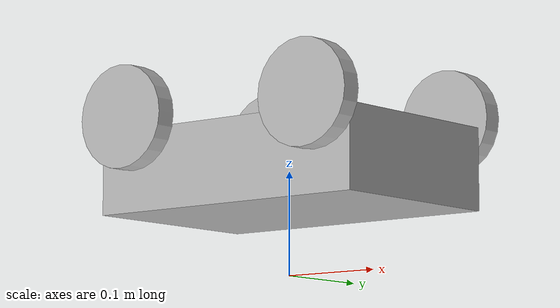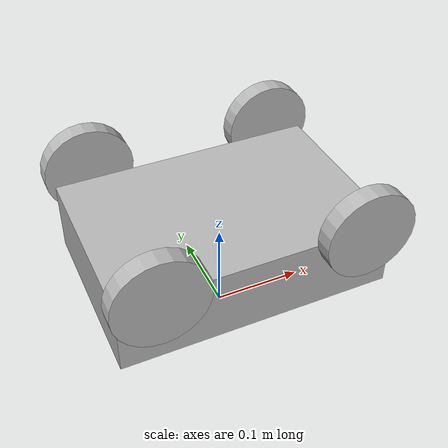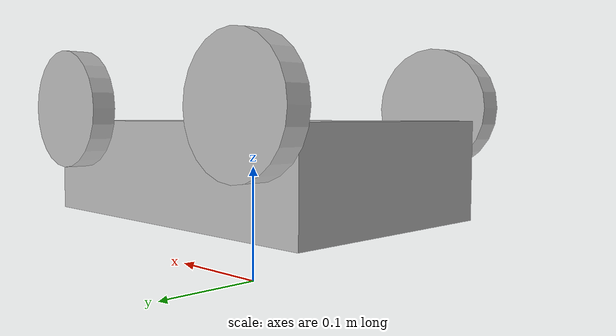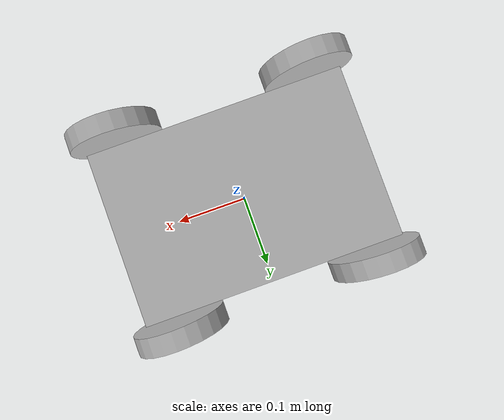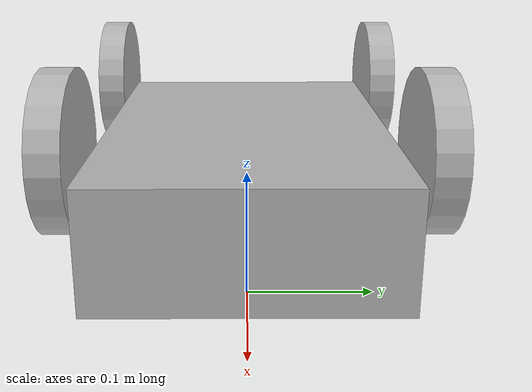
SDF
<?xml version="1.0" ?>
<sdf version="1.10">
  <model name="boxbot">
    <pose>0 0 0.1 0 0 0</pose>

    <!-- Chassis -->
    <link name="base_link">
      <inertial>
        <mass>2.0</mass>
        <inertia>
          <ixx>0.02</ixx><iyy>0.04</iyy><izz>0.05</izz>
          <ixy>0</ixy><ixz>0</ixz><iyz>0</iyz>
        </inertia>
      </inertial>

      <collision name="base_collision">
        <geometry><box><size>0.30 0.20 0.08</size></box></geometry>
      </collision>
      <visual name="base_visual">
        <geometry><box><size>0.30 0.20 0.08</size></box></geometry>
      </visual>
    </link>

    <!-- Wheel helper: cylinder axis is Z by default, rotate about X to make it a wheel -->
    <!-- Front left -->
    <link name="fl_wheel_link">
      <pose>0.11 0.11 0.05 0 0 0</pose>
      <inertial><mass>0.2</mass></inertial>
      <collision name="fl_wheel_collision">
        <pose>0 0 0 1.57079632679 0 0</pose>
        <geometry><cylinder><radius>0.05</radius><length>0.02</length></cylinder></geometry>
      </collision>
      <visual name="fl_wheel_visual">
        <pose>0 0 0 1.57079632679 0 0</pose>
        <geometry><cylinder><radius>0.05</radius><length>0.02</length></cylinder></geometry>
      </visual>
    </link>

    <!-- Rear left -->
    <link name="rl_wheel_link">
      <pose>-0.11 0.11 0.05 0 0 0</pose>
      <inertial><mass>0.2</mass></inertial>
      <collision name="rl_wheel_collision">
        <pose>0 0 0 1.57079632679 0 0</pose>
        <geometry><cylinder><radius>0.05</radius><length>0.02</length></cylinder></geometry>
      </collision>
      <visual name="rl_wheel_visual">
        <pose>0 0 0 1.57079632679 0 0</pose>
        <geometry><cylinder><radius>0.05</radius><length>0.02</length></cylinder></geometry>
      </visual>
    </link>

    <!-- Front right -->
    <link name="fr_wheel_link">
      <pose>0.11 -0.11 0.05 0 0 0</pose>
      <inertial><mass>0.2</mass></inertial>
      <collision name="fr_wheel_collision">
        <pose>0 0 0 1.57079632679 0 0</pose>
        <geometry><cylinder><radius>0.05</radius><length>0.02</length></cylinder></geometry>
      </collision>
      <visual name="fr_wheel_visual">
        <pose>0 0 0 1.57079632679 0 0</pose>
        <geometry><cylinder><radius>0.05</radius><length>0.02</length></cylinder></geometry>
      </visual>
    </link>

    <!-- Rear right -->
    <link name="rr_wheel_link">
      <pose>-0.11 -0.11 0.05 0 0 0</pose>
      <inertial><mass>0.2</mass></inertial>
      <collision name="rr_wheel_collision">
        <pose>0 0 0 1.57079632679 0 0</pose>
        <geometry><cylinder><radius>0.05</radius><length>0.02</length></cylinder></geometry>
      </collision>
      <visual name="rr_wheel_visual">
        <pose>0 0 0 1.57079632679 0 0</pose>
        <geometry><cylinder><radius>0.05</radius><length>0.02</length></cylinder></geometry>
      </visual>
    </link>

    <!-- Wheel joints (pose = wheel location; axis = axle direction, Y) -->
    <joint name="fl_wheel_joint" type="revolute">
      <pose>0.11 0.11 0.05 0 0 0</pose>
      <parent>base_link</parent><child>fl_wheel_link</child>
      <axis><xyz>0 1 0</xyz><limit><lower>-1e16</lower><upper>1e16</upper></limit></axis>
    </joint>

    <joint name="rl_wheel_joint" type="revolute">
      <pose>-0.11 0.11 0.05 0 0 0</pose>
      <parent>base_link</parent><child>rl_wheel_link</child>
      <axis><xyz>0 1 0</xyz><limit><lower>-1e16</lower><upper>1e16</upper></limit></axis>
    </joint>

    <joint name="fr_wheel_joint" type="revolute">
      <pose>0.11 -0.11 0.05 0 0 0</pose>
      <parent>base_link</parent><child>fr_wheel_link</child>
      <axis><xyz>0 1 0</xyz><limit><lower>-1e16</lower><upper>1e16</upper></limit></axis>
    </joint>

    <joint name="rr_wheel_joint" type="revolute">
      <pose>-0.11 -0.11 0.05 0 0 0</pose>
      <parent>base_link</parent><child>rr_wheel_link</child>
      <axis><xyz>0 1 0</xyz><limit><lower>-1e16</lower><upper>1e16</upper></limit></axis>
    </joint>

    <!-- DiffDrive: repeat left/right joints (4 wheels total) -->
    <plugin filename="gz-sim-diff-drive-system" name="gz::sim::systems::DiffDrive">
      <left_joint>fl_wheel_joint</left_joint>
      <left_joint>rl_wheel_joint</left_joint>
      <right_joint>fr_wheel_joint</right_joint>
      <right_joint>rr_wheel_joint</right_joint>

      <wheel_separation>0.22</wheel_separation>
      <wheel_radius>0.05</wheel_radius>

      <odom_topic>odometry</odom_topic>
      <max_linear_velocity>1.0</max_linear_velocity>
      <max_angular_velocity>3.0</max_angular_velocity>
    </plugin>
  </model>
</sdf>
